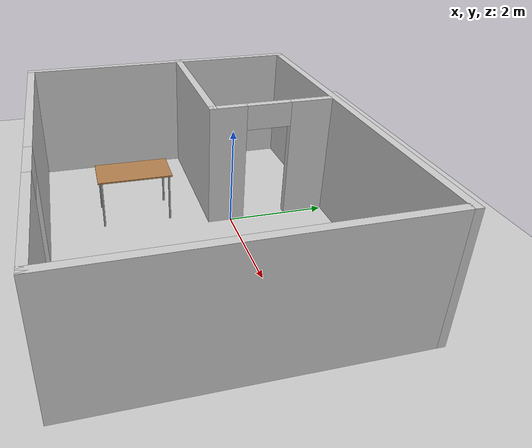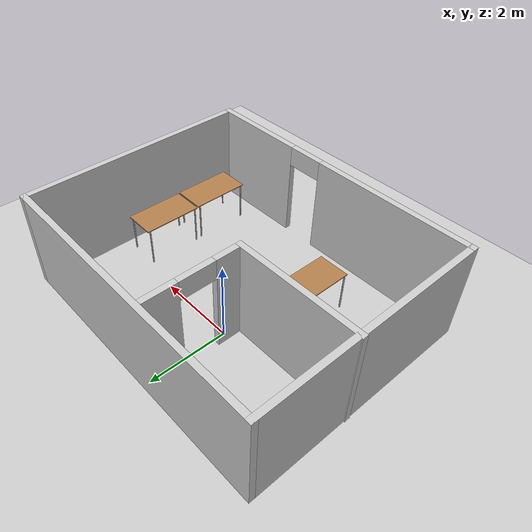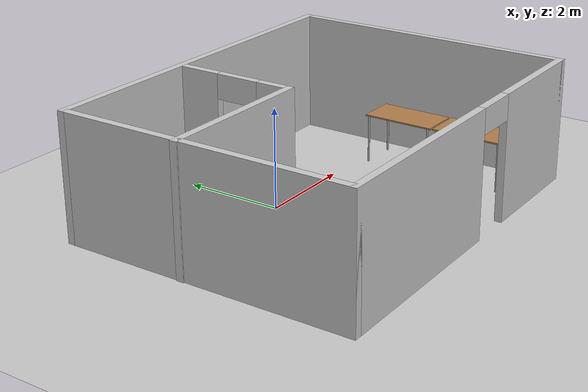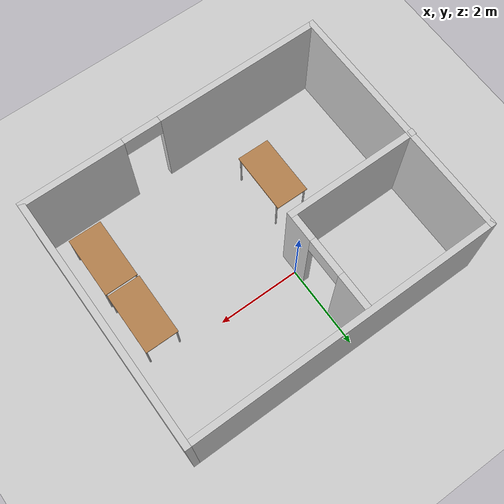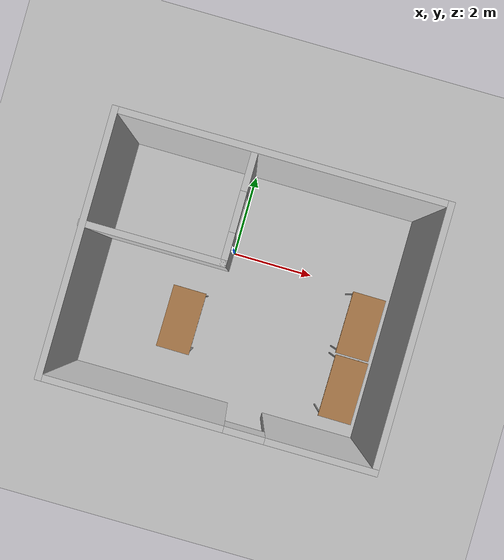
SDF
<sdf version="1.9">
 <world name="LabMap1">
  <scene><ambient>1 1 1 1</ambient><background>0.8 0.8 0.8 1</background><shadows>true</shadows></scene>
  <gravity>0 0 -9.8</gravity>
  <magnetic_field>6e-06 2.3e-05 -4.2e-05</magnetic_field>
  <atmosphere type="adiabatic"/>
  <physics type="ode">
   <max_step_size>0.001</max_step_size>
   <real_time_factor>1</real_time_factor>
   <real_time_update_rate>1000</real_time_update_rate>
  </physics>
  <light name="sun" type="directional">
   <pose>0 0 10 0 -0 0</pose>
   <intensity>1</intensity>
   <direction>-0.5 0.1 -0.9</direction>
   <diffuse>0.8 0.8 0.8 1</diffuse>
   <specular>0.2 0.2 0.2 1</specular>
   <attenuation>
    <range>1000</range>
    <linear>0.01</linear>
    <constant>0.90000000000000002</constant>
    <quadratic>0.001</quadratic>
   </attenuation>
   <spot><inner_angle>0</inner_angle><outer_angle>0</outer_angle><falloff>0</falloff></spot>
  </light>
  <model name="ground_plane">
   <static>1</static>
   <link name="link">
    <collision name="collision">
     <geometry><plane><normal>0 0 1</normal><size>100 100</size></plane></geometry>
     <surface><friction><ode><mu>100</mu><mu2>50</mu2></ode></friction></surface>
    </collision>
    <visual name="visual">
     <cast_shadows>0</cast_shadows>
     <geometry><plane><normal>0 0 1</normal><size>100 100</size></plane></geometry>
     <material>
      <ambient>0.8 0.8 0.8 1</ambient>
      <diffuse>0.8 0.8 0.8 1</diffuse>
      <specular>0.8 0.8 0.8 1</specular>
     </material>
    </visual>
   </link>
  </model>
  <audio><device>default</device></audio>
  <spherical_coordinates>
   <surface_model>EARTH_WGS84</surface_model>
   <latitude_deg>0</latitude_deg>
   <longitude_deg>0</longitude_deg>
   <elevation>0</elevation>
   <heading_deg>0</heading_deg>
  </spherical_coordinates>
  <model name="LabMap1">
   <pose>0.491749 -0.827878 0 0 -0 0</pose>
   <link name="Wall_3">
    <collision name="Wall_3_Collision">
     <geometry><box><size>6 0.15 2.5</size></box></geometry>
     <pose>0 0 1.25 0 -0 0</pose>
    </collision>
    <visual name="Wall_3_Visual">
     <pose>0 0 1.25 0 -0 0</pose>
     <geometry><box><size>6 0.15 2.5</size></box></geometry>
     <material>
      <ambient>0.8 0.8 0.8 1</ambient>
      <diffuse>0.8 0.8 0.8 1</diffuse>
      <specular>0.8 0.8 0.8 1</specular>
     </material>
     <meta><layer>0</layer></meta>
    </visual>
    <pose>-3.66494 -0 0 0 -0 -1.5708</pose>
   </link>
   <link name="Wall_4">
    <pose>0.010057 -2.925 0 0 -0 0</pose>
    <visual name="Wall_4_Visual_0">
     <pose>-1.69484 0 1.25 0 -0 0</pose>
     <geometry><box><size>4.11033 0.15 2.5</size></box></geometry>
     <material>
      <ambient>0.8 0.8 0.8 1</ambient>
      <diffuse>0.8 0.8 0.8 1</diffuse>
      <specular>0.8 0.8 0.8 1</specular>
     </material>
     <meta><layer>0</layer></meta>
    </visual>
    <collision name="Wall_4_Collision_0">
     <geometry><box><size>4.11033 0.15 2.5</size></box></geometry>
     <pose>-1.69484 0 1.25 0 -0 0</pose>
    </collision>
    <visual name="Wall_4_Visual_1">
     <pose>2.50516 0 1.25 0 -0 0</pose>
     <geometry><box><size>2.48967 0.15 2.5</size></box></geometry>
     <material>
      <ambient>0.8 0.8 0.8 1</ambient>
      <diffuse>0.8 0.8 0.8 1</diffuse>
      <specular>0.8 0.8 0.8 1</specular>
     </material>
     <meta><layer>0</layer></meta>
    </visual>
    <collision name="Wall_4_Collision_1">
     <geometry><box><size>2.48967 0.15 2.5</size></box></geometry>
     <pose>2.50516 0 1.25 0 -0 0</pose>
    </collision>
    <visual name="Wall_4_Visual_2">
     <pose>0.810327 0 2.25 0 -0 0</pose>
     <geometry><box><size>0.9 0.15 0.5</size></box></geometry>
     <material>
      <ambient>0.8 0.8 0.8 1</ambient>
      <diffuse>0.8 0.8 0.8 1</diffuse>
      <specular>0.8 0.8 0.8 1</specular>
     </material>
     <meta><layer>0</layer></meta>
    </visual>
    <collision name="Wall_4_Collision_2">
     <geometry><box><size>0.9 0.15 0.5</size></box></geometry>
     <pose>0.810327 0 2.25 0 -0 0</pose>
    </collision>
   </link>
   <link name="Wall_5">
    <collision name="Wall_5_Collision">
     <geometry><box><size>6 0.15 2.5</size></box></geometry>
     <pose>0 0 1.25 0 -0 0</pose>
    </collision>
    <visual name="Wall_5_Visual">
     <pose>0 0 1.25 0 -0 0</pose>
     <geometry><box><size>6 0.15 2.5</size></box></geometry>
     <material>
      <ambient>0.8 0.8 0.8 1</ambient>
      <diffuse>0.8 0.8 0.8 1</diffuse>
      <specular>0.8 0.8 0.8 1</specular>
     </material>
     <meta><layer>0</layer></meta>
    </visual>
    <pose>3.68506 -0 0 0 -0 1.5708</pose>
   </link>
   <link name="Wall_6">
    <collision name="Wall_6_Collision">
     <geometry><box><size>7.5 0.15 2.5</size></box></geometry>
     <pose>0 0 1.25 0 -0 0</pose>
    </collision>
    <visual name="Wall_6_Visual">
     <pose>0 0 1.25 0 -0 0</pose>
     <geometry><box><size>7.5 0.15 2.5</size></box></geometry>
     <material>
      <ambient>0.8 0.8 0.8 1</ambient>
      <diffuse>0.8 0.8 0.8 1</diffuse>
      <specular>0.8 0.8 0.8 1</specular>
     </material>
     <meta><layer>0</layer></meta>
    </visual>
    <pose>0.010057 2.925 0 0 -0 3.14159</pose>
   </link>
   <link name="Wall_8">
    <collision name="Wall_8_Collision">
     <geometry><box><size>3.25 0.15 2.5</size></box></geometry>
     <pose>0 0 1.25 0 -0 0</pose>
    </collision>
    <visual name="Wall_8_Visual">
     <pose>0 0 1.25 0 -0 0</pose>
     <geometry><box><size>3.25 0.15 2.5</size></box></geometry>
     <material>
      <ambient>0.8 0.8 0.8 1</ambient>
      <diffuse>0.8 0.8 0.8 1</diffuse>
      <specular>0.8 0.8 0.8 1</specular>
     </material>
     <meta><layer>0</layer></meta>
    </visual>
    <pose>-2.13506 0.430917 0 0 -0 0</pose>
   </link>
   <link name="Wall_9">
    <pose>-0.585057 1.60592 0 0 -0 1.5708</pose>
    <visual name="Wall_9_Visual_0">
     <pose>-0.87432 0 1.25 0 -0 0</pose>
     <geometry><box><size>0.75136 0.15 2.5</size></box></geometry>
     <material>
      <ambient>0.8 0.8 0.8 1</ambient>
      <diffuse>0.8 0.8 0.8 1</diffuse>
      <specular>0.8 0.8 0.8 1</specular>
     </material>
     <meta><layer>0</layer></meta>
    </visual>
    <collision name="Wall_9_Collision_0">
     <geometry><box><size>0.75136 0.15 2.5</size></box></geometry>
     <pose>-0.87432 0 1.25 0 -0 0</pose>
    </collision>
    <visual name="Wall_9_Visual_1">
     <pose>0.82568 0 1.25 0 -0 0</pose>
     <geometry><box><size>0.84864 0.15 2.5</size></box></geometry>
     <material>
      <ambient>0.8 0.8 0.8 1</ambient>
      <diffuse>0.8 0.8 0.8 1</diffuse>
      <specular>0.8 0.8 0.8 1</specular>
     </material>
     <meta><layer>0</layer></meta>
    </visual>
    <collision name="Wall_9_Collision_1">
     <geometry><box><size>0.84864 0.15 2.5</size></box></geometry>
     <pose>0.82568 0 1.25 0 -0 0</pose>
    </collision>
    <visual name="Wall_9_Visual_2">
     <pose>-0.04864 0 2.25 0 -0 0</pose>
     <geometry><box><size>0.9 0.15 0.5</size></box></geometry>
     <material>
      <ambient>0.8 0.8 0.8 1</ambient>
      <diffuse>0.8 0.8 0.8 1</diffuse>
      <specular>0.8 0.8 0.8 1</specular>
     </material>
     <meta><layer>0</layer></meta>
    </visual>
    <collision name="Wall_9_Collision_2">
     <geometry><box><size>0.9 0.15 0.5</size></box></geometry>
     <pose>-0.04864 0 2.25 0 -0 0</pose>
    </collision>
   </link>
   <static>1</static>
  </model>
  <model name="table">
   <static>1</static>
   <link name="link">
    <collision name="surface">
     <pose>0 0 1 0 -0 0</pose>
     <geometry><box><size>1.5 0.8 0.03</size></box></geometry>
     <surface><friction><ode><mu>0.6</mu><mu2>0.6</mu2></ode></friction></surface>
    </collision>
    <visual name="visual1">
     <pose>0 0 1 0 -0 0</pose>
     <geometry><box><size>1.5 0.8 0.03</size></box></geometry>
     <material>
      <script><uri>file://media/materials/scripts/gazebo.material</uri><name>Gazebo/Wood</name></script>
     </material>
    </visual>
    <collision name="front_left_leg">
     <pose>0.68 0.38 0.5 0 -0 0</pose>
     <geometry><cylinder><radius>0.02</radius><length>1</length></cylinder></geometry>
    </collision>
    <visual name="front_left_leg">
     <pose>0.68 0.38 0.5 0 -0 0</pose>
     <geometry><cylinder><radius>0.02</radius><length>1</length></cylinder></geometry>
     <material>
      <script><uri>file://media/materials/scripts/gazebo.material</uri><name>Gazebo/Grey</name></script>
     </material>
    </visual>
    <collision name="front_right_leg">
     <pose>0.68 -0.38 0.5 0 -0 0</pose>
     <geometry><cylinder><radius>0.02</radius><length>1</length></cylinder></geometry>
    </collision>
    <visual name="front_right_leg">
     <pose>0.68 -0.38 0.5 0 -0 0</pose>
     <geometry><cylinder><radius>0.02</radius><length>1</length></cylinder></geometry>
     <material>
      <script><uri>file://media/materials/scripts/gazebo.material</uri><name>Gazebo/Grey</name></script>
     </material>
    </visual>
    <collision name="back_right_leg">
     <pose>-0.68 -0.38 0.5 0 -0 0</pose>
     <geometry><cylinder><radius>0.02</radius><length>1</length></cylinder></geometry>
    </collision>
    <visual name="back_right_leg">
     <pose>-0.68 -0.38 0.5 0 -0 0</pose>
     <geometry><cylinder><radius>0.02</radius><length>1</length></cylinder></geometry>
     <material>
      <script><uri>file://media/materials/scripts/gazebo.material</uri><name>Gazebo/Grey</name></script>
     </material>
    </visual>
    <collision name="back_left_leg">
     <pose>-0.68 0.38 0.5 0 -0 0</pose>
     <geometry><cylinder><radius>0.02</radius><length>1</length></cylinder></geometry>
    </collision>
    <visual name="back_left_leg">
     <pose>-0.68 0.38 0.5 0 -0 0</pose>
     <geometry><cylinder><radius>0.02</radius><length>1</length></cylinder></geometry>
     <material>
      <script><uri>file://media/materials/scripts/gazebo.material</uri><name>Gazebo/Grey</name></script>
     </material>
    </visual>
   </link>
   <pose>-0.752648 -1.89531 0 0 -0 1.56348</pose>
  </model>
  <model name="table_clone">
   <static>1</static>
   <link name="link">
    <collision name="surface">
     <pose>0 0 1 0 -0 0</pose>
     <geometry><box><size>1.5 0.8 0.03</size></box></geometry>
     <surface><friction><ode><mu>0.6</mu><mu2>0.6</mu2></ode></friction></surface>
    </collision>
    <visual name="visual1">
     <pose>0 0 1 0 -0 0</pose>
     <geometry><box><size>1.5 0.8 0.03</size></box></geometry>
     <material>
      <script><uri>file://media/materials/scripts/gazebo.material</uri><name>Gazebo/Wood</name></script>
     </material>
    </visual>
    <collision name="front_left_leg">
     <pose>0.68 0.38 0.5 0 -0 0</pose>
     <geometry><cylinder><radius>0.02</radius><length>1</length></cylinder></geometry>
    </collision>
    <visual name="front_left_leg">
     <pose>0.68 0.38 0.5 0 -0 0</pose>
     <geometry><cylinder><radius>0.02</radius><length>1</length></cylinder></geometry>
     <material>
      <script><uri>file://media/materials/scripts/gazebo.material</uri><name>Gazebo/Grey</name></script>
     </material>
    </visual>
    <collision name="front_right_leg">
     <pose>0.68 -0.38 0.5 0 -0 0</pose>
     <geometry><cylinder><radius>0.02</radius><length>1</length></cylinder></geometry>
    </collision>
    <visual name="front_right_leg">
     <pose>0.68 -0.38 0.5 0 -0 0</pose>
     <geometry><cylinder><radius>0.02</radius><length>1</length></cylinder></geometry>
     <material>
      <script><uri>file://media/materials/scripts/gazebo.material</uri><name>Gazebo/Grey</name></script>
     </material>
    </visual>
    <collision name="back_right_leg">
     <pose>-0.68 -0.38 0.5 0 -0 0</pose>
     <geometry><cylinder><radius>0.02</radius><length>1</length></cylinder></geometry>
    </collision>
    <visual name="back_right_leg">
     <pose>-0.68 -0.38 0.5 0 -0 0</pose>
     <geometry><cylinder><radius>0.02</radius><length>1</length></cylinder></geometry>
     <material>
      <script><uri>file://media/materials/scripts/gazebo.material</uri><name>Gazebo/Grey</name></script>
     </material>
    </visual>
    <collision name="back_left_leg">
     <pose>-0.68 0.38 0.5 0 -0 0</pose>
     <geometry><cylinder><radius>0.02</radius><length>1</length></cylinder></geometry>
    </collision>
    <visual name="back_left_leg">
     <pose>-0.68 0.38 0.5 0 -0 0</pose>
     <geometry><cylinder><radius>0.02</radius><length>1</length></cylinder></geometry>
     <material>
      <script><uri>file://media/materials/scripts/gazebo.material</uri><name>Gazebo/Grey</name></script>
     </material>
    </visual>
   </link>
   <pose>3.37254 -2.43352 0 0 -0 1.56348</pose>
  </model>
  <model name="table_clone_clone">
   <static>1</static>
   <link name="link">
    <collision name="surface">
     <pose>0 0 1 0 -0 0</pose>
     <geometry><box><size>1.5 0.8 0.03</size></box></geometry>
     <surface><friction><ode><mu>0.6</mu><mu2>0.6</mu2></ode></friction></surface>
    </collision>
    <visual name="visual1">
     <pose>0 0 1 0 -0 0</pose>
     <geometry><box><size>1.5 0.8 0.03</size></box></geometry>
     <material>
      <script><uri>file://media/materials/scripts/gazebo.material</uri><name>Gazebo/Wood</name></script>
     </material>
    </visual>
    <collision name="front_left_leg">
     <pose>0.68 0.38 0.5 0 -0 0</pose>
     <geometry><cylinder><radius>0.02</radius><length>1</length></cylinder></geometry>
    </collision>
    <visual name="front_left_leg">
     <pose>0.68 0.38 0.5 0 -0 0</pose>
     <geometry><cylinder><radius>0.02</radius><length>1</length></cylinder></geometry>
     <material>
      <script><uri>file://media/materials/scripts/gazebo.material</uri><name>Gazebo/Grey</name></script>
     </material>
    </visual>
    <collision name="front_right_leg">
     <pose>0.68 -0.38 0.5 0 -0 0</pose>
     <geometry><cylinder><radius>0.02</radius><length>1</length></cylinder></geometry>
    </collision>
    <visual name="front_right_leg">
     <pose>0.68 -0.38 0.5 0 -0 0</pose>
     <geometry><cylinder><radius>0.02</radius><length>1</length></cylinder></geometry>
     <material>
      <script><uri>file://media/materials/scripts/gazebo.material</uri><name>Gazebo/Grey</name></script>
     </material>
    </visual>
    <collision name="back_right_leg">
     <pose>-0.68 -0.38 0.5 0 -0 0</pose>
     <geometry><cylinder><radius>0.02</radius><length>1</length></cylinder></geometry>
    </collision>
    <visual name="back_right_leg">
     <pose>-0.68 -0.38 0.5 0 -0 0</pose>
     <geometry><cylinder><radius>0.02</radius><length>1</length></cylinder></geometry>
     <material>
      <script><uri>file://media/materials/scripts/gazebo.material</uri><name>Gazebo/Grey</name></script>
     </material>
    </visual>
    <collision name="back_left_leg">
     <pose>-0.68 0.38 0.5 0 -0 0</pose>
     <geometry><cylinder><radius>0.02</radius><length>1</length></cylinder></geometry>
    </collision>
    <visual name="back_left_leg">
     <pose>-0.68 0.38 0.5 0 -0 0</pose>
     <geometry><cylinder><radius>0.02</radius><length>1</length></cylinder></geometry>
     <material>
      <script><uri>file://media/materials/scripts/gazebo.material</uri><name>Gazebo/Grey</name></script>
     </material>
    </visual>
   </link>
   <pose>3.36594 -0.891802 0 0 -0 1.56348</pose>
  </model>
 </world>
</sdf>
